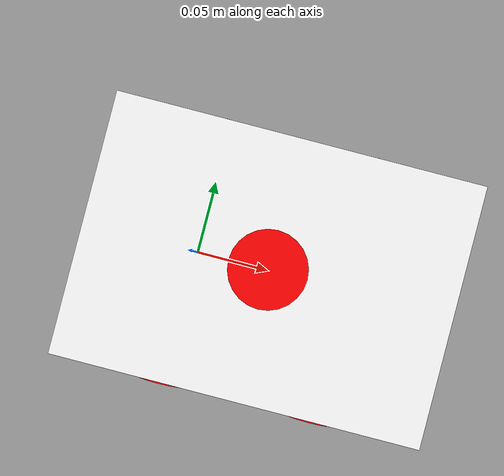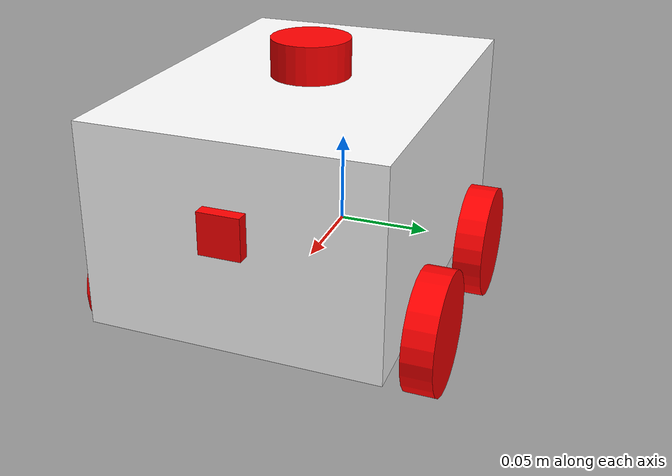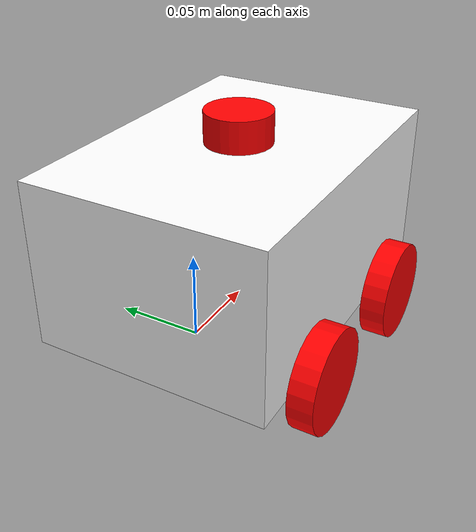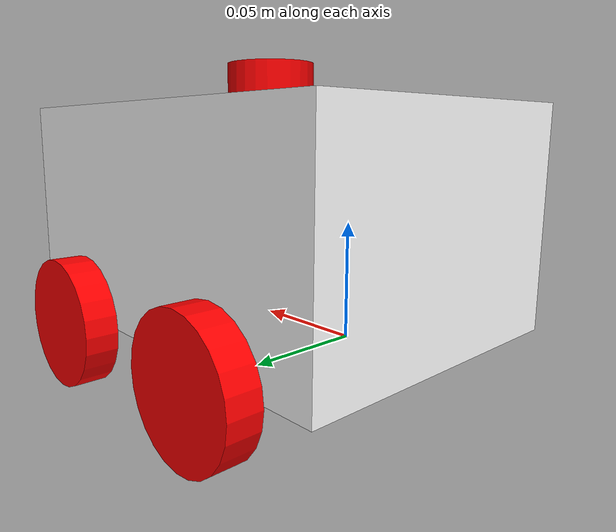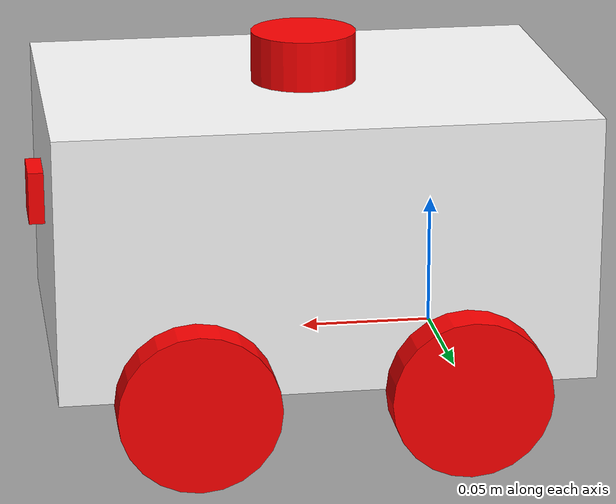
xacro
<?xml version="1.0"?>
<robot xmlns:xacro="http://www.ros.org/wiki/xacro" name="my_robot">

    <xacro:property name="pi" value="3.14"/>

    <!-- BASE LINK -->
    <link name="base_link">
    </link>

    <joint name="base_joint" type="fixed">
        <parent link="base_link"/>
        <child link="chassis_link"/>
        <origin xyz="-0.05 0.0 0.0"/>
    </joint>

    <!-- CHASSIS LINK -->
    <link name="chassis_link">
        <visual>
            <geometry>
                <box size="0.2 0.142 0.1"/>
            </geometry>

            <origin xyz="0.1 0.0 0.05" rpy="0.0 0.0 0.0"/>

            <material name="white">
                <color rgba="1.0 1.0 1.0 1.0"/>
            </material>
        </visual>
        <inertial>
            <mass value="4.0"/>
            <origin xyz="0.1 0.0 0.05" rpy="0.0 0.0 0.0"/>
            <inertia ixx="0.009375" ixy="0.0" ixz="0.0" iyy="0.0152" iyz="0.0" izz="0.0208"/>
        </inertial>
        <collision>
            <geometry>
                <box size="0.2 0.142 0.1"/>
            </geometry>

            <origin xyz="0.1 0.0 0.05" rpy="0.0 0.0 0.0"/>
        </collision>
    </link>

    <!-- Define Wheel -->
    <xacro:macro name="wheel" params="name name_mesh ori_x ori_y ori_r axis_z scale mass">
        <joint name="${name}_joint" type="continuous">
            <parent link="base_link"/>
            <child link="${name}_link"/>
            <origin xyz="${ori_x} ${ori_y} 0.0" rpy="${ori_r} 0.0 0.0"/>
            <axis xyz="0.0 0.0 ${axis_z}"/>
        </joint>

        <link name="${name}_link">
            <visual>
                <geometry>
                    <cylinder radius="0.03" length="0.015"/>
                </geometry>

                <origin xyz="0.0 0.0 0.0" rpy="0.0 0.0 0.0"/>

                <material name="red">
                    <color rgba="1.0 0.0 0.0 1.0"/>
                </material>
            </visual>

            <inertial>
                <mass value="${mass}"/>
                <origin xyz="0.0 0.0 0.0" rpy="0.0 0.0 0.0"/>
                <inertia ixx="0.000975" ixy="0.0" ixz="0.0" iyy="0.000975" iyz="0.0" izz="0.0018"/>
            </inertial>

            <collision>
                <geometry>
                    <cylinder radius="0.03" length="0.015"/>
                </geometry>

                <origin xyz="0.0 0.0 0.0" rpy="0.0 0.0 0.0"/>
            </collision>
        </link>
    </xacro:macro>

    <!-- BACK LEFT WHEEL -->
    <xacro:wheel name="back_left_wheel" name_mesh="left_tire.stl"
                ori_x="0.00" ori_y="0.08" ori_r="-1.57"
                axis_z="1.0" scale="0.002" mass="0.5"/>

    <!-- BACK RIGHT WHEEL -->
    <xacro:wheel name="back_right_wheel" name_mesh="left_tire.stl"
                ori_x="0.00" ori_y="-0.08" ori_r="1.57"
                axis_z="-1.0" scale="0.002" mass="0.5"/>

    <!-- FRONT LEFT WHEEL -->
    <xacro:wheel name="front_left_wheel" name_mesh="left_tire.stl"
                ori_x="0.10" ori_y="0.08" ori_r="-1.57"
                axis_z="1.0" scale="0.002" mass="0.5"/>

    <!-- FRONT RIGHT WHEEL -->
    <xacro:wheel name="front_right_wheel" name_mesh="left_tire.stl"
                ori_x="0.10" ori_y="-0.08" ori_r="1.57"
                axis_z="-1.0" scale="0.002" mass="0.5"/>

    <!-- Transmission -->

    <xacro:include filename="gazebo.xacro"/>
    <xacro:include filename="gazebo_controll.xacro"/>
    <xacro:include filename="lidar.xacro"/>
    <xacro:include filename="depth_camera.xacro"/>
    <xacro:include filename="camera.xacro"/>

</robot>

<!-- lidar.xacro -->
<robot xmlns:xacro="http://www.ros.org/wiki/xacro" name="robot_name">
    <joint name="laser_joint" type="fixed">
        <parent link="chassis_link"/>
        <child link="laser_frame"/>
        <origin xyz="0.1 0.0 0.109" rpy="0.0 0.0 0.0"/>
    </joint>

    <link name="laser_frame">
        <visual>
            <geometry>
               <cylinder radius="0.02" length="0.02"/>
            </geometry>

            <origin xyz="0.0 0.0 0.0" rpy="0.0 0.0 0.0"/>

            <material name="red">
                <color rgba="1.0 0.0 0.0 1.0"/>
            </material>
        </visual>

        <inertial>
            <mass value="0.1"/>
            <origin xyz="0.0 0.0 0.0" rpy="0.0 0.0 0.0"/>
            <inertia ixx="0.000975" ixy="0.0" ixz="0.0" iyy="0.000975" iyz="0.0" izz="0.0018"/>
        </inertial>

        <collision>
            <geometry>
                <cylinder radius="0.02" length="0.02"/>
            </geometry>

            <origin xyz="0.0 0.0 0.0" rpy="0.0 0.0 0.0"/>
        </collision>
    </link>

    <gazebo reference="laser_frame">
        <material>Gazebo/Red</material>
        <sensor name="laser" type="ray">
            <pose>0 0 0 0 0 0</pose>
            <!-- set true to visible false to unvisible -->
            <visualize>true</visualize>
            <update_rate>40</update_rate>
            <ray>
                <scan>
                    <horizontal>
                        <samples>720</samples>
                        <resolution>1</resolution>
                        <min_angle>-3.14</min_angle>
                        <max_angle>3.14</max_angle>
                    </horizontal>
                </scan>
                <range>
                    <min>0.3</min>
                    <max>12.0</max>
                    <resolution>0.01</resolution>
                </range>
                <noise>
                    <type>gaussian</type>
                    <mean>0.0</mean>
                    <stddev>0.01</stddev>
                </noise>
            </ray>

            <plugin name="laser_controller" filename="libgazebo_ros_laser.so">
                <topicName>/laser/scan</topicName>
                <frameName>laser_frame</frameName>
            </plugin>

        </sensor>
    </gazebo>
</robot>

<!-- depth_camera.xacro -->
<robot xmlns:xacro="http://www.ros.org/wiki/xacro" name="robot_name">

    <joint name="camera_joint_depth" type="fixed">
        <parent link="chassis_link"/>
        <child link="camera_link_depth"/>
        <origin xyz="0.2 0.0 0.06" rpy="0.0 0.0 0.0"/>
    </joint>

    <link name="camera_link_depth">
        <visual>
            <geometry>
                <box size="0.012 0.02 0.02"/>
            </geometry>
            <material name="red">
                <color rgba="1.0 0.0 0.0 1.0"/>
            </material>
        </visual>
    </link>

    <joint name="camera_optical_joint_depth" type="fixed">
        <parent link="camera_link_depth"/>
        <child link="camera_optical_link_depth"/>
        <origin xyz="0.0 0.0 0.0" rpy="${-pi/2} 0.0 ${-pi/2}"/>
    </joint>

    <link name="camera_optical_link_depth"></link>

    <gazebo reference="camera_link_depth">
        <material>Gazebo/Red</material>
        <sensor name="camera_depth" type="depth">
            <pose>0 0 0 0 0 0</pose>
            <visualize>true</visualize>
            <update_rate>10</update_rate>
            <camera>
                <horizontal_fov>1.089</horizontal_fov>
                <image>
                    <format>B8G8R8</format>
                    <width>640</width>
                    <height>480</height>
                </image>
                <depth_camera></depth_camera>
                <clip>
                    <near>0.05</near>
                    <far>8.0</far>
                </clip>
            </camera>

            <plugin name="camera_controller_depth" filename="libgazebo_ros_openni_kinect.so">
                <baseline>0.2</baseline>
                <alwaysOn>true</alwaysOn>
                <frameName>camera_optical_link_depth</frameName>
                <cameraName>camera</cameraName>
                <imageTopicName>rgb/image_raw</imageTopicName>
                <depthImageTopicName>depth/image_raw</depthImageTopicName>
                <pointCloudTopicName>depth/points</pointCloudTopicName>
                <cameraInfoTopicName>rgb/camera_info</cameraInfoTopicName>
                <depthImageCameraInfoTopicName>depth/camera_info</depthImageCameraInfoTopicName>
                <pointCloudCutoff>0.4</pointCloudCutoff>
                <pointCloudCutoffMax>3.0</pointCloudCutoffMax>
                <hackBaseline>0.07</hackBaseline>
                <distortionK1>0.0</distortionK1>
                <distortionK2>0.0</distortionK2>
                <distortionK3>0.0</distortionK3>
                <distortionT1>0.0</distortionT1>
                <distortionT2>0.0</distortionT2>
                <CxPrime>0.0</CxPrime>
                <Cx>0.0</Cx>
                <Cy>0.0</Cy>
                <focalLength>0</focalLength>
                <hackBaseline>0</hackBaseline>
                <min_depth>0.1</min_depth>
                <max_depth>100.0</max_depth>
            </plugin>

        </sensor>
    </gazebo>
</robot>

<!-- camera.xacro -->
<robot xmlns:xacro="http://www.ros.org/wiki/xacro" name="robot_name">

    <joint name="camera_joint" type="fixed">
        <parent link="chassis_link"/>
        <child link="camera_link"/>
        <origin xyz="0.2 0.0 0.06" rpy="0.0 0.0 0.0"/>
    </joint>

    <link name="camera_link">
        <visual>
            <geometry>
                <box size="0.012 0.02 0.02"/>
            </geometry>
            <material name="red">
                <color rgba="1.0 0.0 0.0 1.0"/>
            </material>
        </visual>
    </link>

    <joint name="camera_optical_joint" type="fixed">
        <parent link="camera_link"/>
        <child link="camera_optical_link"/>
        <origin xyz="0.0 0.0 0.0" rpy="${-pi/2} 0.0 ${-pi/2}"/>
    </joint>

    <link name="camera_optical_link"></link>

    <gazebo reference="camera_link">
        <material>Gazebo/Red</material>
        <sensor name="camera" type="camera">
            <pose>0 0 0 0 0 0</pose>
            <visualize>true</visualize>
            <update_rate>10</update_rate>
            <camera>
                <horizontal_fov>1.089</horizontal_fov>
                <image>
                    <format>R8G8B8</format>
                    <width>640</width>
                    <height>480</height>
                </image>
                <clip>
                    <near>0.05</near>
                    <far>30.0</far>
                </clip>
            </camera>

            <plugin name="camera_controller" filename="libgazebo_ros_camera.so">
                <frameName>camera_optical_link</frameName>
            </plugin>

        </sensor>
    </gazebo>
</robot>
